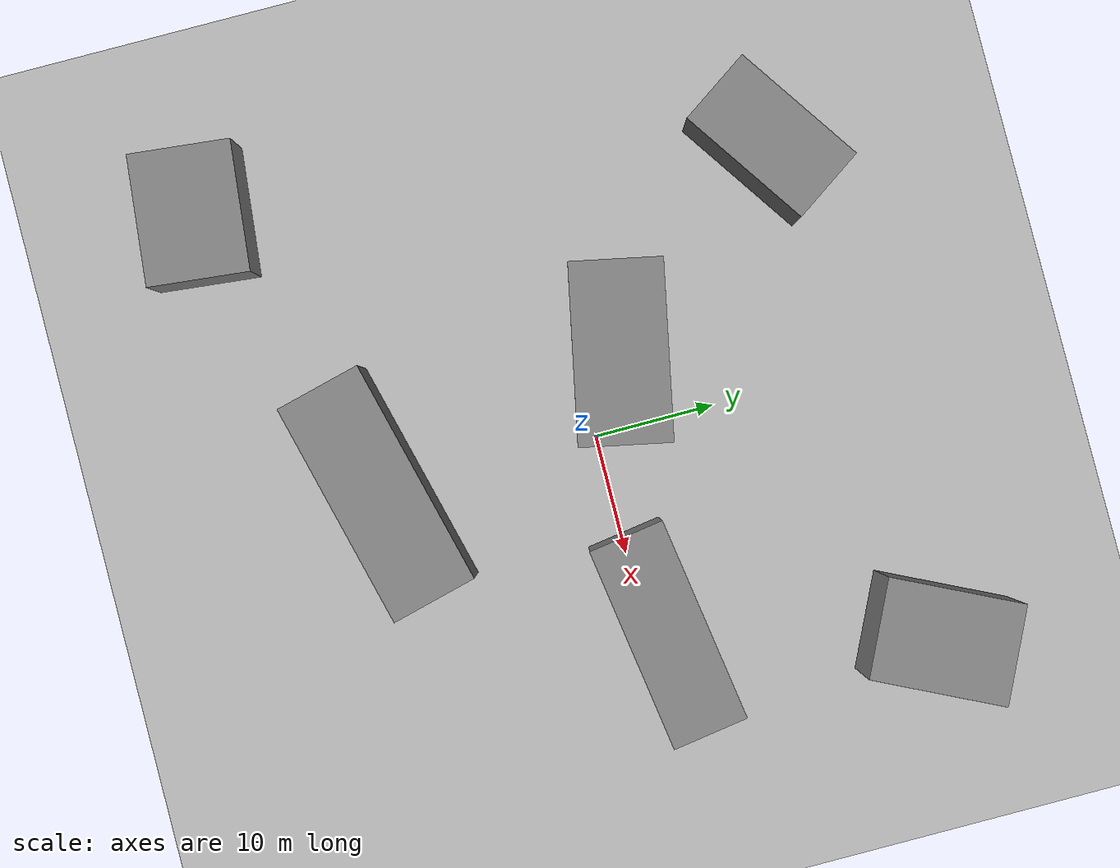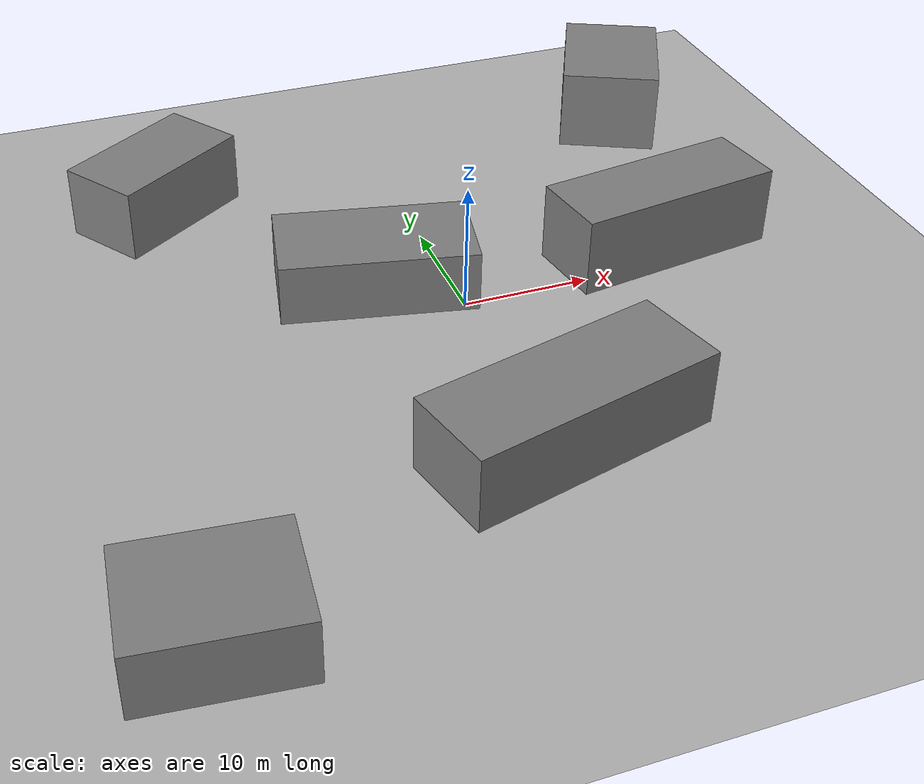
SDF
<?xml version="1.0" ?>
<sdf version='1.7'>
  <world name='default'>
    <light name='sun' type='directional'>
      <cast_shadows>1</cast_shadows>
      <pose>0 0 30 0 0 0</pose>
      <diffuse>0.8 0.8 0.8 1</diffuse>
      <specular>0.2 0.2 0.2 1</specular>
      <attenuation>
        <range>1000</range>
        <constant>0.9</constant>
        <linear>0.01</linear>
        <quadratic>0.001</quadratic>
      </attenuation>
      <direction>-0.5 0.1 -0.9</direction>
    </light>

    <model name='ground_plane'>
      <static>1</static>
      <link name='link'>
        <collision name='collision'>
          <geometry><plane><normal>0 0 1</normal><size>500 500</size></plane></geometry>
        </collision>
        <visual name='visual'>
          <cast_shadows>0</cast_shadows>
          <geometry><plane><normal>0 0 1</normal><size>500 500</size></plane></geometry>
          <material>
            <ambient>0.7 0.7 0.7 1</ambient>
            <diffuse>0.7 0.7 0.7 1</diffuse>
            <specular>0.2 0.2 0.2 1</specular>
          </material>
        </visual>
      </link>
    </model>

    <gravity>0 0 -9.8</gravity>
    <atmosphere type='adiabatic'/>
    <physics type='ode'>
      <max_step_size>0.004</max_step_size>
      <real_time_factor>1</real_time_factor>
      <real_time_update_rate>250</real_time_update_rate>
    </physics>

    <plugin filename="ignition-gazebo-physics-system" name="gz::sim::systems::Physics"/>
    <plugin filename="ignition-gazebo-sensors-system" name="gz::sim::systems::Sensors">
      <render_engine>ogre2</render_engine>
    </plugin>
    <plugin filename="ignition-gazebo-user-commands-system" name="gz::sim::systems::UserCommands"/>
    <plugin filename="ignition-gazebo-scene-broadcaster-system" name="gz::sim::systems::SceneBroadcaster"/>

    <scene>
      <ambient>0.4 0.4 0.4 1</ambient>
      <background>0.7 0.7 0.7 1</background>
      <shadows>1</shadows>
    </scene>

    <!-- (g) 近似：分散的多边形障碍（用不同尺寸/角度的 box 近似），整体尺度 ~ 30m x 24m -->
    <model name='arena_g'>
      <static>1</static>
      <pose>0 0 0 0 0 0</pose>

      <!-- scattered obstacles (整体放大 3 倍；去掉外边界围墙) -->
      <link name='obs_01'>
        <pose>-19.5 19.5 3.6 0 0 0.6</pose>
        <collision name='collision'><geometry><box><size>12 6.72 5.76</size></box></geometry></collision>
        <visual name='visual'>
          <geometry><box><size>12 6.72 5.76</size></box></geometry>
          <material><ambient>0.5 0.5 0.5 1</ambient><diffuse>0.5 0.5 0.5 1</diffuse></material>
        </visual>
      </link>
      <link name='obs_02'>
        <pose>-6.0 3.6 3.0 0 0 -0.2</pose>
        <collision name='collision'><geometry><box><size>14.88 7.68 4.8</size></box></geometry></collision>
        <visual name='visual'>
          <geometry><box><size>14.88 7.68 4.8</size></box></geometry>
          <material><ambient>0.5 0.5 0.5 1</ambient><diffuse>0.5 0.5 0.5 1</diffuse></material>
        </visual>
      </link>
      <link name='obs_03'>
        <pose>16.5 1.5 3.9 0 0 0.15</pose>
        <collision name='collision'><geometry><box><size>16.8 6.24 6.24</size></box></geometry></collision>
        <visual name='visual'>
          <geometry><box><size>16.8 6.24 6.24</size></box></geometry>
          <material><ambient>0.5 0.5 0.5 1</ambient><diffuse>0.5 0.5 0.5 1</diffuse></material>
        </visual>
      </link>
      <link name='obs_04'>
        <pose>22.5 22.5 4.2 0 0 -0.45</pose>
        <collision name='collision'><geometry><box><size>8.16 11.04 6.72</size></box></geometry></collision>
        <visual name='visual'>
          <geometry><box><size>8.16 11.04 6.72</size></box></geometry>
          <material><ambient>0.5 0.5 0.5 1</ambient><diffuse>0.5 0.5 0.5 1</diffuse></material>
        </visual>
      </link>
      <link name='obs_05'>
        <pose>0.0 -18.0 3.6 0 0 0.25</pose>
        <collision name='collision'><geometry><box><size>19.2 7.2 5.76</size></box></geometry></collision>
        <visual name='visual'>
          <geometry><box><size>19.2 7.2 5.76</size></box></geometry>
          <material><ambient>0.5 0.5 0.5 1</ambient><diffuse>0.5 0.5 0.5 1</diffuse></material>
        </visual>
      </link>
      <link name='obs_06'>
        <pose>-25.5 -27.0 3.0 0 0 -0.1</pose>
        <collision name='collision'><geometry><box><size>10.8 8.4 4.8</size></box></geometry></collision>
        <visual name='visual'>
          <geometry><box><size>10.8 8.4 4.8</size></box></geometry>
          <material><ambient>0.5 0.5 0.5 1</ambient><diffuse>0.5 0.5 0.5 1</diffuse></material>
        </visual>
      </link>
    </model>

    <gui fullscreen='0'>
      <camera name='user_camera'>
        <pose>-96 0 60 0 0.7 0</pose>
        <view_controller>orbit</view_controller>
        <projection_type>perspective</projection_type>
      </camera>
    </gui>
  </world>
</sdf>
